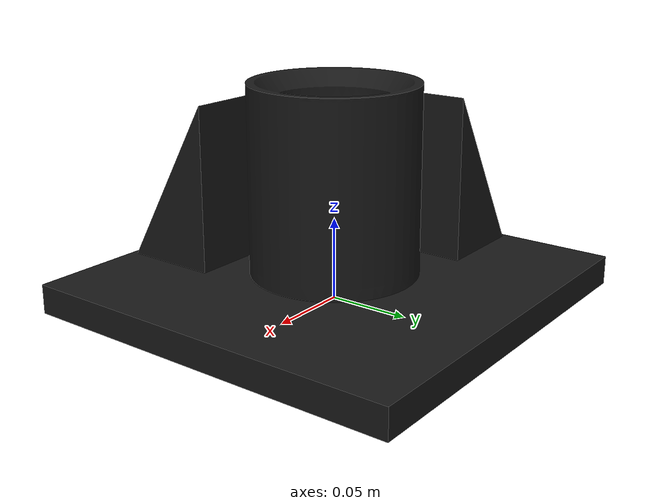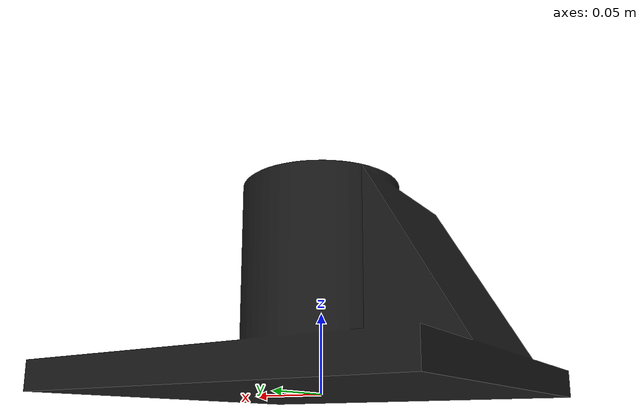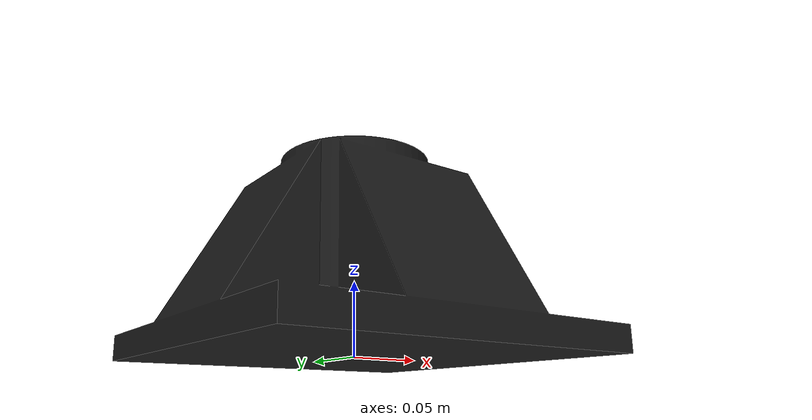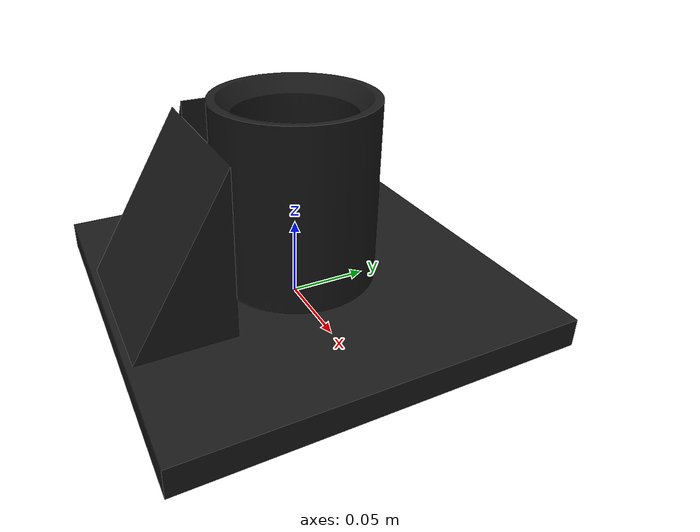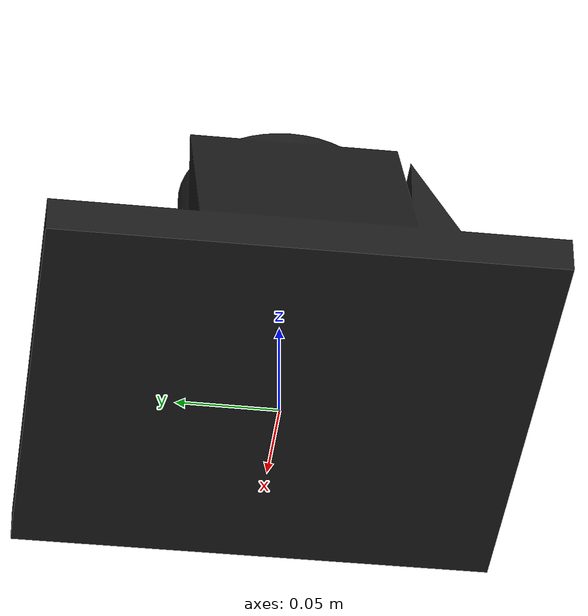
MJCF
<mujoco model="cylinder_jig_m">
  <default>
    <default class="visual">
      <geom group="2" type="mesh" contype="0" conaffinity="0"/>
    </default>
    <default class="collision">
      <geom group="3" type="mesh"/>
    </default>
  </default>
  <asset>
    <material name="mtl_cylinder_jig_m" specular="0.20000000000000004" shininess="1.0" rgba="0.10196078 0.10196078 0.10196078 1.0"/>
    <mesh file="cylinder_jig_m.obj"/>
  </asset>
  <worldbody>
    <body name="cylinder_jig_m">
      <geom material="mtl_cylinder_jig_m" mesh="cylinder_jig_m" class="visual"/>
      <geom mesh="cylinder_jig_m" class="collision"/>
    </body>
  </worldbody>
</mujoco>
